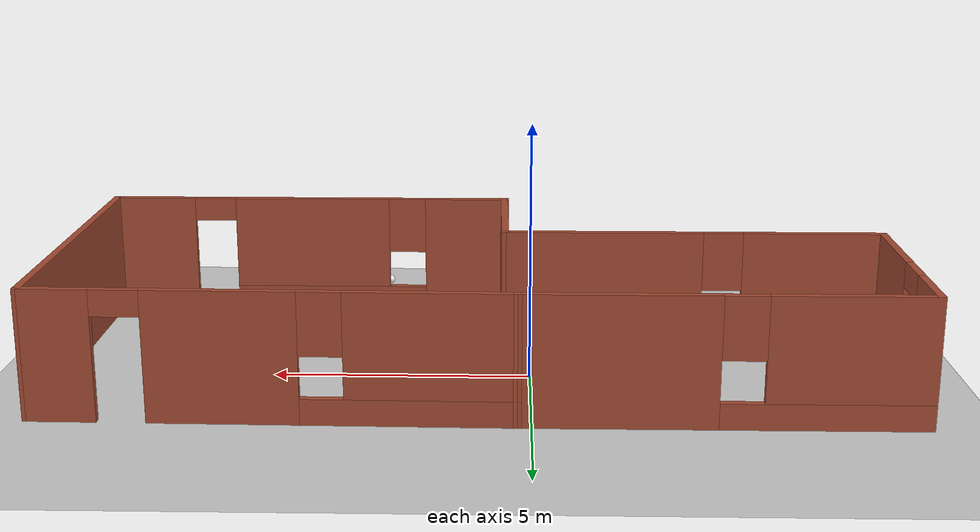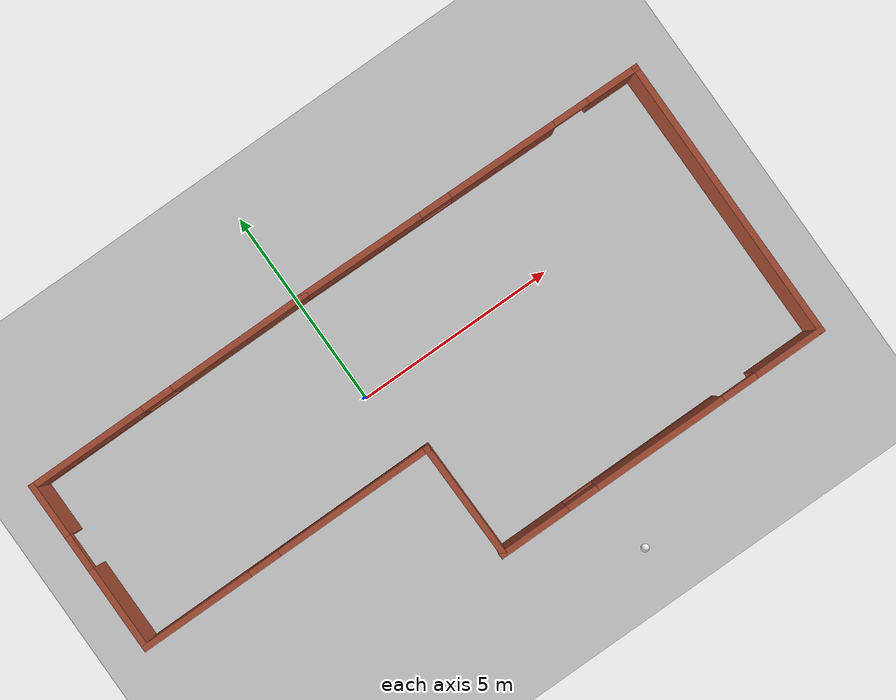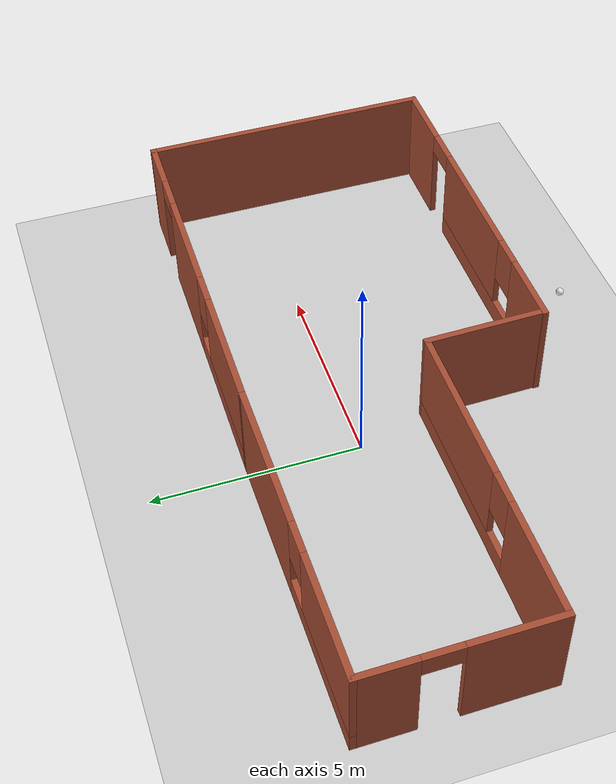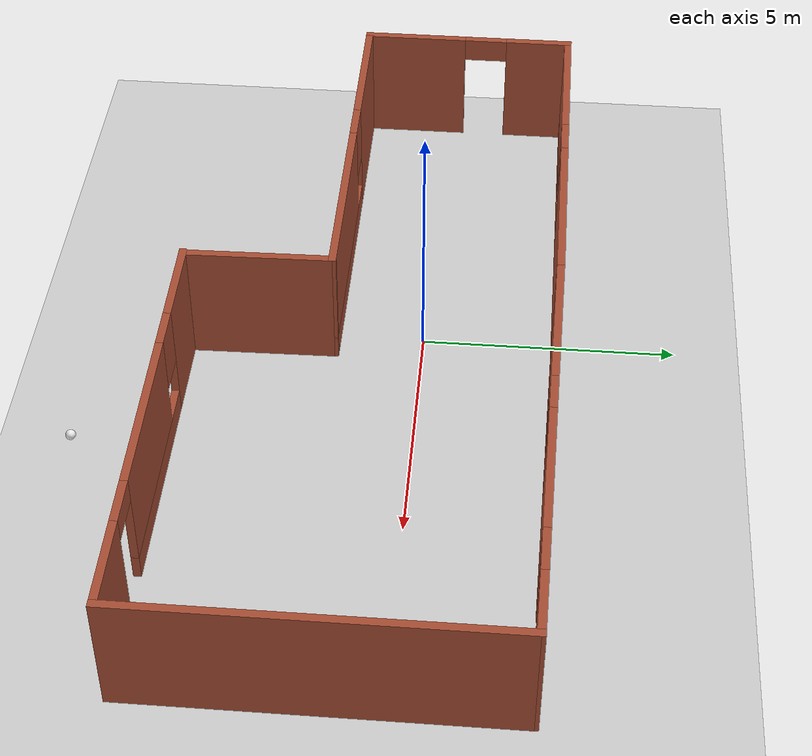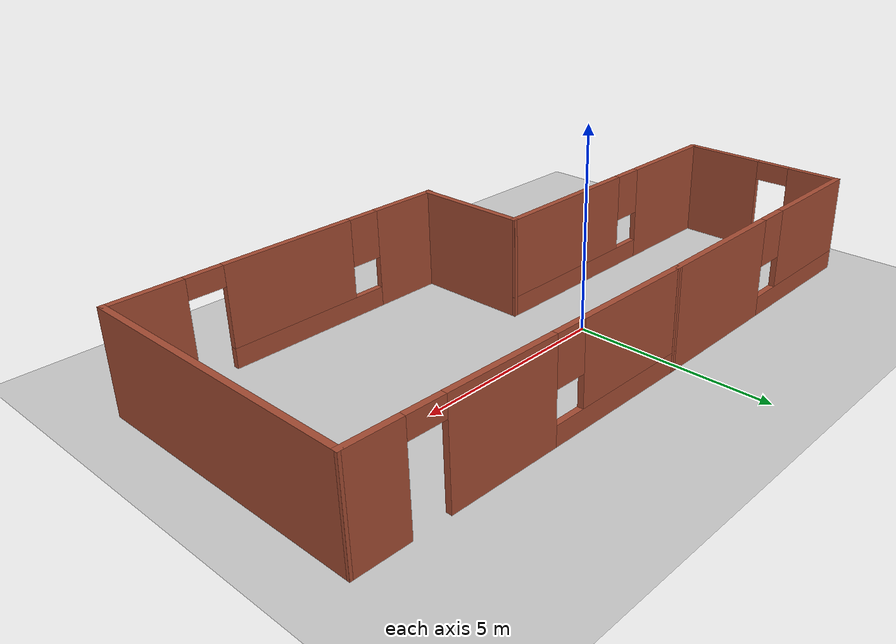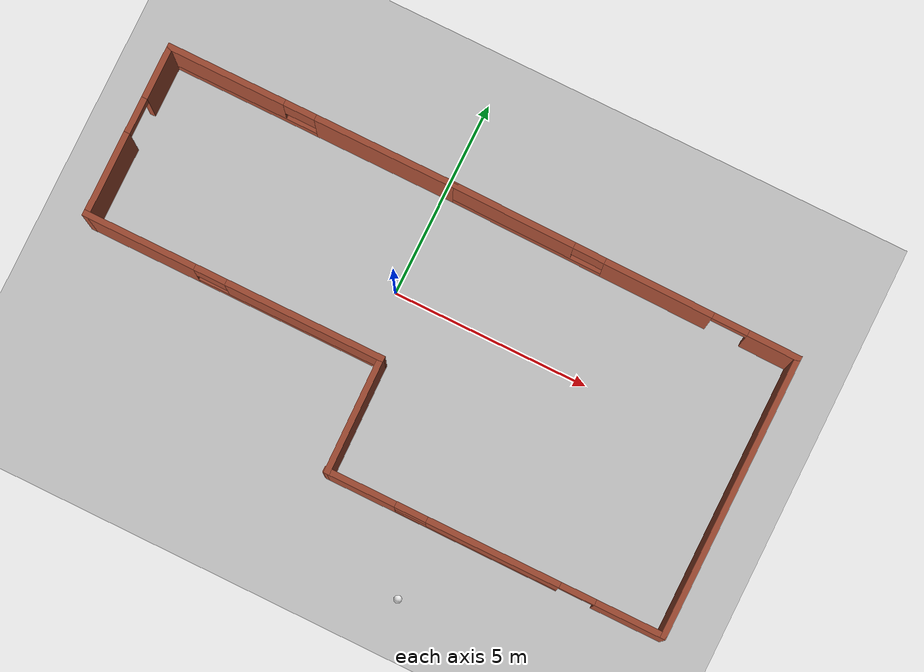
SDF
<sdf version="1.6">
 <world name="default">
  <model name="ground_plane">
   <static>1</static>
   <link name="link">
    <collision name="collision">
     <geometry><plane><normal>0 0 1</normal><size>100 100</size></plane></geometry>
     <surface>
      <contact><collide_bitmask>65535</collide_bitmask></contact>
      <friction><ode><mu>100</mu><mu2>50</mu2></ode></friction>
     </surface>
    </collision>
    <visual name="visual">
     <cast_shadows>0</cast_shadows>
     <geometry><plane><normal>0 0 1</normal><size>100 100</size></plane></geometry>
     <material>
      <script><uri>file://media/materials/scripts/gazebo.material</uri><name>Gazebo/Grey</name></script>
     </material>
    </visual>
   </link>
  </model>
  <light name="sun" type="directional">
   <pose>0 0 10 0 -0 0</pose>
   <diffuse>0.8 0.8 0.8 1</diffuse>
   <specular>0.2 0.2 0.2 1</specular>
   <attenuation>
    <range>1000</range>
    <constant>0.9</constant>
    <linear>0.01</linear>
    <quadratic>0.001</quadratic>
   </attenuation>
   <direction>-0.5 0.1 -0.9</direction>
  </light>
  <gravity>0 0 -9.8</gravity>
  <magnetic_field>6e-06 2.3e-05 -4.2e-05</magnetic_field>
  <atmosphere type="adiabatic"/>
  <physics name="default_physics" default="0" type="ode">
   <max_step_size>0.001</max_step_size>
   <real_time_factor>1</real_time_factor>
   <real_time_update_rate>1000</real_time_update_rate>
  </physics>
  <scene><ambient>0.4 0.4 0.4 1</ambient><background>0.7 0.7 0.7 1</background><shadows>1</shadows></scene>
  <spherical_coordinates>
   <surface_model>EARTH_WGS84</surface_model>
   <latitude_deg>0</latitude_deg>
   <longitude_deg>0</longitude_deg>
   <elevation>0</elevation>
   <heading_deg>0</heading_deg>
  </spherical_coordinates>
  <model name="mybuilding">
   <pose>1.01355 -0.979823 0 0 -0 0</pose>
   <link name="Wall_0">
    <pose>-4.43708 3.61176 0 0 -0 3.14159</pose>
    <visual name="Wall_0_Visual_0">
     <pose>-1.91745 0 1.25 0 -0 0</pose>
     <geometry><box><size>3.6651 0.15 2.5</size></box></geometry>
     <material>
      <script><uri>file://media/materials/scripts/gazebo.material</uri><name>Gazebo/Bricks</name></script>
      <ambient>0.760784 0.662745 0.627451 1</ambient>
     </material>
     <meta><layer>0</layer></meta>
    </visual>
    <collision name="Wall_0_Collision_0">
     <geometry><box><size>3.6651 0.15 2.5</size></box></geometry>
     <pose>-1.91745 0 1.25 0 -0 0</pose>
    </collision>
    <visual name="Wall_0_Visual_1">
     <pose>1.83255 0 0.25 0 -0 0</pose>
     <geometry><box><size>3.8349 0.15 0.5</size></box></geometry>
     <material>
      <script><uri>file://media/materials/scripts/gazebo.material</uri><name>Gazebo/Bricks</name></script>
      <ambient>0.760784 0.662745 0.627451 1</ambient>
     </material>
     <meta><layer>0</layer></meta>
    </visual>
    <collision name="Wall_0_Collision_1">
     <geometry><box><size>3.8349 0.15 0.5</size></box></geometry>
     <pose>1.83255 0 0.25 0 -0 0</pose>
    </collision>
    <visual name="Wall_0_Visual_2">
     <pose>2.23255 0 1.5 0 -0 0</pose>
     <geometry><box><size>3.0349 0.15 2</size></box></geometry>
     <material>
      <script><uri>file://media/materials/scripts/gazebo.material</uri><name>Gazebo/Bricks</name></script>
      <ambient>0.760784 0.662745 0.627451 1</ambient>
     </material>
     <meta><layer>0</layer></meta>
    </visual>
    <collision name="Wall_0_Collision_2">
     <geometry><box><size>3.0349 0.15 2</size></box></geometry>
     <pose>2.23255 0 1.5 0 -0 0</pose>
    </collision>
    <visual name="Wall_0_Visual_3">
     <pose>0.315097 0 1.9 0 -0 0</pose>
     <geometry><box><size>0.8 0.15 1.2</size></box></geometry>
     <material>
      <script><uri>file://media/materials/scripts/gazebo.material</uri><name>Gazebo/Bricks</name></script>
      <ambient>0.760784 0.662745 0.627451 1</ambient>
     </material>
     <meta><layer>0</layer></meta>
    </visual>
    <collision name="Wall_0_Collision_3">
     <geometry><box><size>0.8 0.15 1.2</size></box></geometry>
     <pose>0.315097 0 1.9 0 -0 0</pose>
    </collision>
   </link>
   <link name="Wall_1">
    <pose>-8.11208 1.43676 0 0 0 -1.5708</pose>
    <visual name="Wall_1_Visual_0">
     <pose>-1.54278 0 1.25 0 -0 0</pose>
     <geometry><box><size>1.41444 0.15 2.5</size></box></geometry>
     <material>
      <script><uri>file://media/materials/scripts/gazebo.material</uri><name>Gazebo/Bricks</name></script>
      <ambient>0.760784 0.662745 0.627451 1</ambient>
     </material>
     <meta><layer>0</layer></meta>
    </visual>
    <collision name="Wall_1_Collision_0">
     <geometry><box><size>1.41444 0.15 2.5</size></box></geometry>
     <pose>-1.54278 0 1.25 0 -0 0</pose>
    </collision>
    <visual name="Wall_1_Visual_1">
     <pose>1.15722 0 1.25 0 -0 0</pose>
     <geometry><box><size>2.18556 0.15 2.5</size></box></geometry>
     <material>
      <script><uri>file://media/materials/scripts/gazebo.material</uri><name>Gazebo/Bricks</name></script>
      <ambient>0.760784 0.662745 0.627451 1</ambient>
     </material>
     <meta><layer>0</layer></meta>
    </visual>
    <collision name="Wall_1_Collision_1">
     <geometry><box><size>2.18556 0.15 2.5</size></box></geometry>
     <pose>1.15722 0 1.25 0 -0 0</pose>
    </collision>
    <visual name="Wall_1_Visual_2">
     <pose>-0.385556 0 2.25 0 -0 0</pose>
     <geometry><box><size>0.9 0.15 0.5</size></box></geometry>
     <material>
      <script><uri>file://media/materials/scripts/gazebo.material</uri><name>Gazebo/Bricks</name></script>
      <ambient>0.760784 0.662745 0.627451 1</ambient>
     </material>
     <meta><layer>0</layer></meta>
    </visual>
    <collision name="Wall_1_Collision_2">
     <geometry><box><size>0.9 0.15 0.5</size></box></geometry>
     <pose>-0.385556 0 2.25 0 -0 0</pose>
    </collision>
   </link>
   <link name="Wall_2">
    <pose>-4.31208 -0.738236 0 0 -0 0</pose>
    <visual name="Wall_2_Visual_0">
     <pose>-2.43402 0 1.25 0 -0 0</pose>
     <geometry><box><size>2.88195 0.15 2.5</size></box></geometry>
     <material>
      <script><uri>file://media/materials/scripts/gazebo.material</uri><name>Gazebo/Bricks</name></script>
      <ambient>0.760784 0.662745 0.627451 1</ambient>
     </material>
     <meta><layer>0</layer></meta>
    </visual>
    <collision name="Wall_2_Collision_0">
     <geometry><box><size>2.88195 0.15 2.5</size></box></geometry>
     <pose>-2.43402 0 1.25 0 -0 0</pose>
    </collision>
    <visual name="Wall_2_Visual_1">
     <pose>1.44098 0 0.25 0 -0 0</pose>
     <geometry><box><size>4.86805 0.15 0.5</size></box></geometry>
     <material>
      <script><uri>file://media/materials/scripts/gazebo.material</uri><name>Gazebo/Bricks</name></script>
      <ambient>0.760784 0.662745 0.627451 1</ambient>
     </material>
     <meta><layer>0</layer></meta>
    </visual>
    <collision name="Wall_2_Collision_1">
     <geometry><box><size>4.86805 0.15 0.5</size></box></geometry>
     <pose>1.44098 0 0.25 0 -0 0</pose>
    </collision>
    <visual name="Wall_2_Visual_2">
     <pose>1.84098 0 1.5 0 -0 0</pose>
     <geometry><box><size>4.06805 0.15 2</size></box></geometry>
     <material>
      <script><uri>file://media/materials/scripts/gazebo.material</uri><name>Gazebo/Bricks</name></script>
      <ambient>0.760784 0.662745 0.627451 1</ambient>
     </material>
     <meta><layer>0</layer></meta>
    </visual>
    <collision name="Wall_2_Collision_2">
     <geometry><box><size>4.06805 0.15 2</size></box></geometry>
     <pose>1.84098 0 1.5 0 -0 0</pose>
    </collision>
    <visual name="Wall_2_Visual_3">
     <pose>-0.593048 0 1.9 0 -0 0</pose>
     <geometry><box><size>0.8 0.15 1.2</size></box></geometry>
     <material>
      <script><uri>file://media/materials/scripts/gazebo.material</uri><name>Gazebo/Bricks</name></script>
      <ambient>0.760784 0.662745 0.627451 1</ambient>
     </material>
     <meta><layer>0</layer></meta>
    </visual>
    <collision name="Wall_2_Collision_3">
     <geometry><box><size>0.8 0.15 1.2</size></box></geometry>
     <pose>-0.593048 0 1.9 0 -0 0</pose>
    </collision>
   </link>
   <link name="Wall_3">
    <collision name="Wall_3_Collision">
     <geometry><box><size>3.02397 0.15 2.5</size></box></geometry>
     <pose>0 0 1.25 0 -0 0</pose>
    </collision>
    <visual name="Wall_3_Visual">
     <pose>0 0 1.25 0 -0 0</pose>
     <geometry><box><size>3.02397 0.15 2.5</size></box></geometry>
     <material>
      <script><uri>file://media/materials/scripts/gazebo.material</uri><name>Gazebo/Bricks</name></script>
      <ambient>0.760784 0.662745 0.627451 1</ambient>
     </material>
     <meta><layer>0</layer></meta>
    </visual>
    <pose>-0.488951 -2.1748 0 0 0 -1.5547</pose>
   </link>
   <link name="Wall_4">
    <pose>3.81105 -3.61137 0 0 -0 0</pose>
    <visual name="Wall_4_Visual_0">
     <pose>-3.45714 0 1.25 0 -0 0</pose>
     <geometry><box><size>1.83572 0.15 2.5</size></box></geometry>
     <material>
      <script><uri>file://media/materials/scripts/gazebo.material</uri><name>Gazebo/Bricks</name></script>
      <ambient>0.760784 0.662745 0.627451 1</ambient>
     </material>
     <meta><layer>0</layer></meta>
    </visual>
    <collision name="Wall_4_Collision_0">
     <geometry><box><size>1.83572 0.15 2.5</size></box></geometry>
     <pose>-3.45714 0 1.25 0 -0 0</pose>
    </collision>
    <visual name="Wall_4_Visual_1">
     <pose>3.46888 0 1.25 0 -0 0</pose>
     <geometry><box><size>1.81224 0.15 2.5</size></box></geometry>
     <material>
      <script><uri>file://media/materials/scripts/gazebo.material</uri><name>Gazebo/Bricks</name></script>
      <ambient>0.760784 0.662745 0.627451 1</ambient>
     </material>
     <meta><layer>0</layer></meta>
    </visual>
    <collision name="Wall_4_Collision_1">
     <geometry><box><size>1.81224 0.15 2.5</size></box></geometry>
     <pose>3.46888 0 1.25 0 -0 0</pose>
    </collision>
    <visual name="Wall_4_Visual_2">
     <pose>-0.438258 0 0.25 0 -0 0</pose>
     <geometry><box><size>4.20204 0.15 0.5</size></box></geometry>
     <material>
      <script><uri>file://media/materials/scripts/gazebo.material</uri><name>Gazebo/Bricks</name></script>
      <ambient>0.760784 0.662745 0.627451 1</ambient>
     </material>
     <meta><layer>0</layer></meta>
    </visual>
    <collision name="Wall_4_Collision_2">
     <geometry><box><size>4.20204 0.15 0.5</size></box></geometry>
     <pose>-0.438258 0 0.25 0 -0 0</pose>
    </collision>
    <visual name="Wall_4_Visual_3">
     <pose>-0.038258 0 1.5 0 -0 0</pose>
     <geometry><box><size>3.40204 0.15 2</size></box></geometry>
     <material>
      <script><uri>file://media/materials/scripts/gazebo.material</uri><name>Gazebo/Bricks</name></script>
      <ambient>0.760784 0.662745 0.627451 1</ambient>
     </material>
     <meta><layer>0</layer></meta>
    </visual>
    <collision name="Wall_4_Collision_3">
     <geometry><box><size>3.40204 0.15 2</size></box></geometry>
     <pose>-0.038258 0 1.5 0 -0 0</pose>
    </collision>
    <visual name="Wall_4_Visual_4">
     <pose>-2.13928 0 1.9 0 -0 0</pose>
     <geometry><box><size>0.8 0.15 1.2</size></box></geometry>
     <material>
      <script><uri>file://media/materials/scripts/gazebo.material</uri><name>Gazebo/Bricks</name></script>
      <ambient>0.760784 0.662745 0.627451 1</ambient>
     </material>
     <meta><layer>0</layer></meta>
    </visual>
    <collision name="Wall_4_Collision_4">
     <geometry><box><size>0.8 0.15 1.2</size></box></geometry>
     <pose>-2.13928 0 1.9 0 -0 0</pose>
    </collision>
    <visual name="Wall_4_Visual_5">
     <pose>2.11276 0 2.25 0 -0 0</pose>
     <geometry><box><size>0.9 0.15 0.5</size></box></geometry>
     <material>
      <script><uri>file://media/materials/scripts/gazebo.material</uri><name>Gazebo/Bricks</name></script>
      <ambient>0.760784 0.662745 0.627451 1</ambient>
     </material>
     <meta><layer>0</layer></meta>
    </visual>
    <collision name="Wall_4_Collision_5">
     <geometry><box><size>0.9 0.15 0.5</size></box></geometry>
     <pose>2.11276 0 2.25 0 -0 0</pose>
    </collision>
   </link>
   <link name="Wall_6">
    <collision name="Wall_6_Collision">
     <geometry><box><size>7.25 0.15 2.5</size></box></geometry>
     <pose>0 0 1.25 0 -0 0</pose>
    </collision>
    <visual name="Wall_6_Visual">
     <pose>0 0 1.25 0 -0 0</pose>
     <geometry><box><size>7.25 0.15 2.5</size></box></geometry>
     <material>
      <script><uri>file://media/materials/scripts/gazebo.material</uri><name>Gazebo/Bricks</name></script>
      <ambient>0.760784 0.662745 0.627451 1</ambient>
     </material>
     <meta><layer>0</layer></meta>
    </visual>
    <pose>8.11105 -0.061367 0 0 -0 1.5708</pose>
   </link>
   <link name="Wall_7">
    <pose>3.67448 3.5502 0 0 -0 3.12772</pose>
    <visual name="Wall_7_Visual_0">
     <pose>-3.83357 0 1.25 0 -0 0</pose>
     <geometry><box><size>1.35684 0.15 2.5</size></box></geometry>
     <material>
      <script><uri>file://media/materials/scripts/gazebo.material</uri><name>Gazebo/Bricks</name></script>
      <ambient>0.760784 0.662745 0.627451 1</ambient>
     </material>
     <meta><layer>0</layer></meta>
    </visual>
    <collision name="Wall_7_Collision_0">
     <geometry><box><size>1.35684 0.15 2.5</size></box></geometry>
     <pose>-3.83357 0 1.25 0 -0 0</pose>
    </collision>
    <visual name="Wall_7_Visual_1">
     <pose>-0.860424 0 1.25 0 -0 0</pose>
     <geometry><box><size>2.78946 0.15 2.5</size></box></geometry>
     <material>
      <script><uri>file://media/materials/scripts/gazebo.material</uri><name>Gazebo/Bricks</name></script>
      <ambient>0.760784 0.662745 0.627451 1</ambient>
     </material>
     <meta><layer>0</layer></meta>
    </visual>
    <collision name="Wall_7_Collision_1">
     <geometry><box><size>2.78946 0.15 2.5</size></box></geometry>
     <pose>-0.860424 0 1.25 0 -0 0</pose>
    </collision>
    <visual name="Wall_7_Visual_2">
     <pose>2.52315 0 0.25 0 -0 0</pose>
     <geometry><box><size>3.97769 0.15 0.5</size></box></geometry>
     <material>
      <script><uri>file://media/materials/scripts/gazebo.material</uri><name>Gazebo/Bricks</name></script>
      <ambient>0.760784 0.662745 0.627451 1</ambient>
     </material>
     <meta><layer>0</layer></meta>
    </visual>
    <collision name="Wall_7_Collision_2">
     <geometry><box><size>3.97769 0.15 0.5</size></box></geometry>
     <pose>2.52315 0 0.25 0 -0 0</pose>
    </collision>
    <visual name="Wall_7_Visual_3">
     <pose>2.92315 0 1.5 0 -0 0</pose>
     <geometry><box><size>3.17768 0.15 2</size></box></geometry>
     <material>
      <script><uri>file://media/materials/scripts/gazebo.material</uri><name>Gazebo/Bricks</name></script>
      <ambient>0.760784 0.662745 0.627451 1</ambient>
     </material>
     <meta><layer>0</layer></meta>
    </visual>
    <collision name="Wall_7_Collision_3">
     <geometry><box><size>3.17768 0.15 2</size></box></geometry>
     <pose>2.92315 0 1.5 0 -0 0</pose>
    </collision>
    <visual name="Wall_7_Visual_4">
     <pose>0.934307 0 1.9 0 -0 0</pose>
     <geometry><box><size>0.8 0.15 1.2</size></box></geometry>
     <material>
      <script><uri>file://media/materials/scripts/gazebo.material</uri><name>Gazebo/Bricks</name></script>
      <ambient>0.760784 0.662745 0.627451 1</ambient>
     </material>
     <meta><layer>0</layer></meta>
    </visual>
    <collision name="Wall_7_Collision_4">
     <geometry><box><size>0.8 0.15 1.2</size></box></geometry>
     <pose>0.934307 0 1.9 0 -0 0</pose>
    </collision>
    <visual name="Wall_7_Visual_5">
     <pose>-2.70515 0 2.25 0 -0 0</pose>
     <geometry><box><size>0.9 0.15 0.5</size></box></geometry>
     <material>
      <script><uri>file://media/materials/scripts/gazebo.material</uri><name>Gazebo/Bricks</name></script>
      <ambient>0.760784 0.662745 0.627451 1</ambient>
     </material>
     <meta><layer>0</layer></meta>
    </visual>
    <collision name="Wall_7_Collision_5">
     <geometry><box><size>0.9 0.15 0.5</size></box></geometry>
     <pose>-2.70515 0 2.25 0 -0 0</pose>
    </collision>
   </link>
   <static>1</static>
  </model>
  <model name="ball">
   <link name="link_0">
    <inertial>
     <mass>1</mass>
     <inertia><ixx>0.1</ixx><ixy>0</ixy><ixz>0</ixz><iyy>0.1</iyy><iyz>0</iyz><izz>0.1</izz></inertia>
    </inertial>
    <visual name="visual">
     <geometry><sphere><radius>0.1</radius></sphere></geometry>
     <material>
      <lighting>1</lighting>
      <script><uri>file://media/materials/scripts/gazebo.material</uri><name>Gazebo/White</name></script>
      <shader type="pixel"><normal_map>__default__</normal_map></shader>
      <ambient>1 1 1 1</ambient>
      <diffuse>1 1 1 1</diffuse>
      <specular>1 1 1 1</specular>
      <emissive>1 1 1 1</emissive>
     </material>
    </visual>
    <collision name="collision">
     <geometry><sphere><radius>0.1</radius></sphere></geometry>
     <surface>
      <friction>
       <ode><mu>1</mu><mu2>1</mu2><fdir1>0 0 0</fdir1><slip1>0</slip1><slip2>0</slip2></ode>
       <torsional>
        <coefficient>1</coefficient>
        <patch_radius>0</patch_radius>
        <surface_radius>0</surface_radius>
        <use_patch_radius>1</use_patch_radius>
        <ode><slip>0</slip></ode>
       </torsional>
      </friction>
      <bounce><restitution_coefficient>0</restitution_coefficient><threshold>1e+06</threshold></bounce>
      <contact>
       <collide_without_contact>0</collide_without_contact>
       <collide_without_contact_bitmask>1</collide_without_contact_bitmask>
       <collide_bitmask>1</collide_bitmask>
       <ode>
        <soft_cfm>0</soft_cfm>
        <soft_erp>0.2</soft_erp>
        <kp>1e+13</kp>
        <kd>1</kd>
        <max_vel>0.01</max_vel>
        <min_depth>0</min_depth>
       </ode>
       <bullet>
        <split_impulse>1</split_impulse>
        <split_impulse_penetration_threshold>-0.01</split_impulse_penetration_threshold>
        <soft_cfm>0</soft_cfm>
        <soft_erp>0.2</soft_erp>
        <kp>1e+13</kp>
        <kd>1</kd>
       </bullet>
      </contact>
     </surface>
    </collision>
   </link>
   <static>0</static>
   <pose>3.23719 -6.476 0.1 0 -0 0</pose>
  </model>
 </world>
</sdf>
